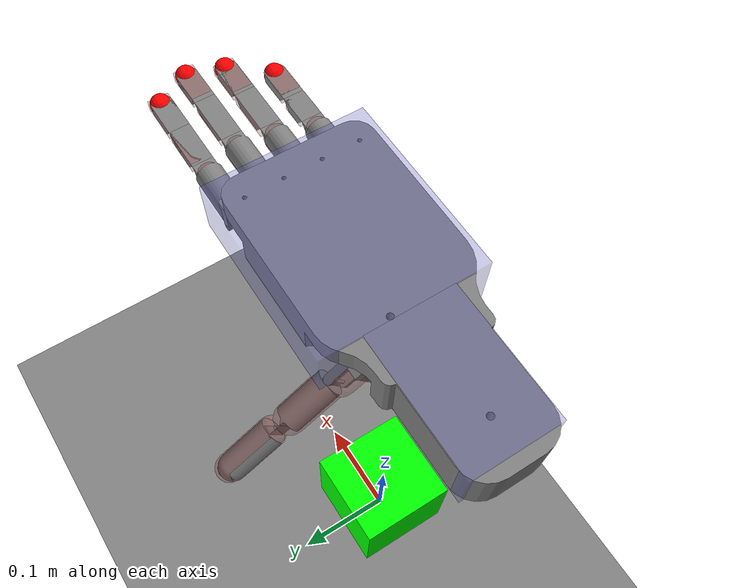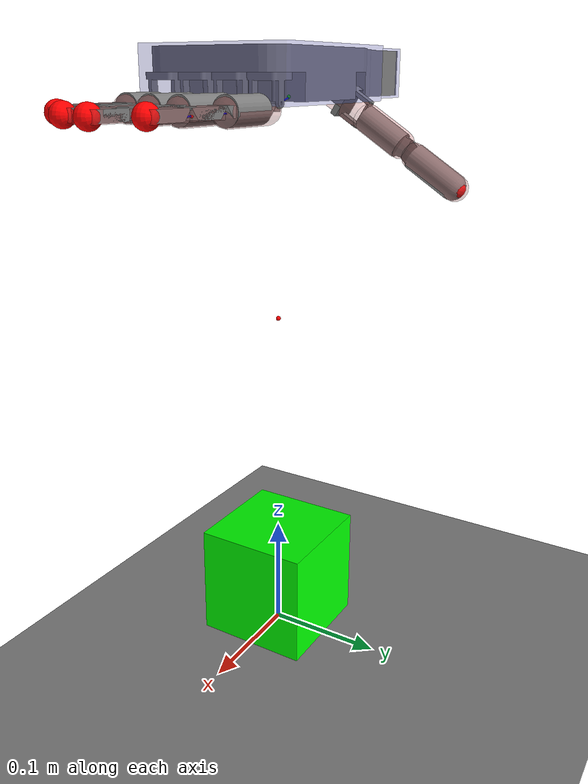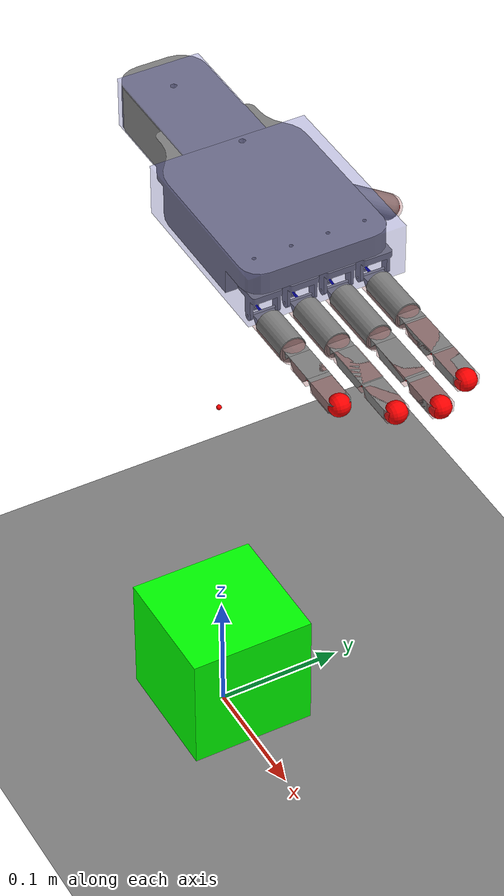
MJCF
<?xml version='1.0' encoding='utf-8'?>
<mujoco model="hand">
    <compiler angle="radian" />
    <option integrator="implicitfast" />
    <default>
        <geom solref="0.001 1" solimp="0.99 0.999 0.0001"/>
        <default class="cube">
            <geom friction="2.0 0.1 0.002" contype="2" conaffinity="1" condim="4" />
        </default>
        <default class="hand">
            <geom contype="1" conaffinity="2" type="mesh" density="1250" friction="0.7 0.05 0.0002" solref="0.02 1.5" solimp="0.9 0.95 0.001" condim="3" rgba="0 0 1 0"/>
        </default>
        <default class="visual">
            <geom contype="0" conaffinity="0" group="2" density="1"/>
        </default>
        <default class="tip">
            <geom type="sphere" size="0.0075" rgba="1 1 .6 .3" contype="1" conaffinity="2" density="1000" friction="12 0.2 0.01" solref="0.01 1" solimp="0.98 0.995 0.001" condim="6"/>
        </default>
        <!-- collision -->
        <default class="collision">
            <geom contype="1" conaffinity="2" density="1250" friction="1.0 0.1 0.001" solref="0.01 1" solimp="0.99 0.999 0.0001" condim="3" rgba="0.7 0.3 0.3 0.3"/>
        </default>
        <default class="palm_collision">
            <geom contype="1" conaffinity="2" density="1500" friction="1.0 0.1 0.001" solref="0.01 1" solimp="0.99 0.999 0.0001" condim="3" rgba="0.3 0.3 0.7 0.3"/>
        </default>
        <!-- tendon -->
        <default class="tendon">
            <tendon width=".0005" rgba="0 0 .9 1" solreflimit=".001 1" solimplimit="0.99 0.999 0.00001 0.1 20" stiffness="1"/>
        </default>
        <!-- joints -->
        <default class="thumb_joint">
            <joint type="hinge" solreflimit=".001 1" solimplimit="0.97 0.99 0.00001 0.1 2" damping="1" stiffness="1"/>
        </default>
        <default class="swing_joint">
            <joint type="hinge" solreflimit=".001 1" solimplimit="0.97 0.99 0.00001 0.1 2" damping="1" stiffness="1"/>
        </default>
        <default class="finger_joint">
            <joint type="hinge" range="0 1.57" limited="true" solreflimit=".001 1" solimplimit="0.97 0.99 0.00001 0.1 2" damping="1" stiffness="2"/>
        </default>
        <default class="palm_slide">
            <joint solreflimit=".001 1" solimplimit="0.97 0.99 0.00001 0.1 2" damping="1" stiffness="100"/>
        </default>
        <default class="palm_rotate">
            <joint solreflimit=".001 1" solimplimit="0.97 0.99 0.00001 0.1 2" damping="1" stiffness="60" limited="true"/>
        </default>
        <default class="touch_sensor">
            <site size="0.008" rgba="1 0 0 1" type="sphere"/>
        </default>
    </default>
    <asset>
        <texture type="2d" name="groundplane" builtin="checker" mark="edge" rgb1="1 1 1" rgb2="0 0 0" markrgb="0 0 0" width="300" height="300"/>
        <material name="groundplane" texture="groundplane" texuniform="true" texrepeat="5 5" reflectance="0"/>
        <mesh file="./meshes/palm.STL" name="mesh_0" />
        <mesh file="./meshes/thumb_link_0.STL" name="mesh_1" />
        <mesh file="./meshes/thumb_link_1.STL" name="mesh_2" />
        <mesh file="./meshes/thumb_link_2.STL" name="mesh_3" />
        <mesh file="./meshes/thumb_link_3.STL" name="mesh_4" />
        <mesh file="./meshes/index_link_0.STL" name="mesh_5" />
        <mesh file="./meshes/index_link_1.STL" name="mesh_6" />
        <mesh file="./meshes/index_link_2.STL" name="mesh_7" />
        <mesh file="./meshes/index_link_3.STL" name="mesh_8" />
        <mesh file="./meshes/middle_link_0.STL" name="mesh_9" />
        <mesh file="./meshes/middle_link_1.STL" name="mesh_10" />
        <mesh file="./meshes/middle_link_2.STL" name="mesh_11" />
        <mesh file="./meshes/middle_link_3.STL" name="mesh_12" />
        <mesh file="./meshes/ring_link_0.STL" name="mesh_13" />
        <mesh file="./meshes/ring_link_1.STL" name="mesh_14" />
        <mesh file="./meshes/ring_link_2.STL" name="mesh_15" />
        <mesh file="./meshes/ring_link_3.STL" name="mesh_16" />
        <mesh file="./meshes/little_link_0.STL" name="mesh_17" />
        <mesh file="./meshes/little_link_1.STL" name="mesh_18" />
        <mesh file="./meshes/little_link_2.STL" name="mesh_19" />
        <mesh file="./meshes/little_link_3.STL" name="mesh_20" />
    </asset>
    <option gravity="0 0 -9.81"/>
    <keyframe>
        <key name="home" qpos="0 0 0 0 0 0 0 0 0 0 0 0 0 0 0 0 0 0 0 0 0 0 0 0 0 0 0 0 0 0 0 0" qvel="0 0 0 0 0 0 0 0 0 0 0 0 0 0 0 0 0 0 0 0 0 0 0 0 0 0 0 0 0 0 0" ctrl="0 0 0 0 0 0 0 0 0 0 0 0 0 0 0 0 0 0 0 0 0 0" />
    </keyframe>
    <worldbody>
        <geom name="floor" pos="0 0 0" size="0 0 0.01" type="plane" material="groundplane" contype="1" conaffinity="2" friction="1 0.05 0.05" solref="0.001 1" solimp="0.98 0.99 0.001"/>
        <site name="target" pos="0 0 0.3" size="0.002" rgba="1 0 0 1"/>
        <body name="palm" pos="0 0 0.5" euler="3.14 1.57 -1.57" childclass="hand">
            <site name="palm_pos_site" pos="0.02 -0.02 0.06" size="0.002" rgba="0 0 1 1"/>
            <site name="index_t0" pos="0.059512 -0.015 0.082" size="0.002" rgba="0 0.6 0 1"/>
            <site name="middle_t0" pos="0.031512 -0.015 0.082" size="0.002" rgba="0 0.6 0 1"/>
            <site name="ring_t0" pos="0.003512 -0.015 0.082" size="0.002" rgba="0 0.6 0 1"/>
            <site name="little_t0" pos="-0.024488 -0.015 0.082" size="0.002" rgba="0 0.6 0 1"/>
            <joint name="palm_slide_x" type="slide" axis="1 0 0" class="palm_slide"/>
            <joint name="palm_slide_y" type="slide" axis="0 0 1" class="palm_slide"/>
            <joint name="palm_slide_z" type="slide" axis="0 1 0" class="palm_slide"/>
            <joint name="palm_rotate_x" type="hinge" axis="1 0 0" range="-1.57 1.57" class="palm_rotate"/>
            <joint name="palm_rotate_y" type="hinge" axis="0 1 0" range="-1.57 1.57" class="palm_rotate"/>
            <joint name="palm_rotate_z" type="hinge" axis="0 0 1" range="-3.14 3.14" class="palm_rotate"/>
            <geom name="palm_collision_1" type="box" pos="0.02 0 0.05" size="0.06 0.02 0.07" class="palm_collision"/>
            <geom name="palm_collision_2" type="box" pos="0.018 0 -0.07" size="0.032 0.02 0.05" class="palm_collision"/>
            <geom type="mesh" mesh="mesh_0" pos="0 0 0" class="visual"/>
            <body name="thumb_link_0" pos="0.029812 0 -0.017086" euler="3.14 1.57 0">
                <joint name="thumb_joint_0" type="hinge" axis="0 1 0" class="thumb_joint"/>
                <geom type="mesh" mesh="mesh_1" pos="0 0 0" class="visual"/>
                <body name="thumb_link_1" pos="0 0.011600 0.008500" euler="-0.57 0 0">
                    <joint name="thumb_joint_1" type="hinge" axis="-1 0 0" class="thumb_joint"/>
                    <geom type="mesh" mesh="mesh_2" pos="0 0 0" class="visual"/>
                    <geom name="thumb_link_1_collision" type="capsule" fromto="0 0 0 0 0 0.03" size="0.012" class="collision"/>
                    <body name="thumb_link_2" pos="0 0 0.033000" euler="-1.57 0 -1.57">
                        <joint name="thumb_joint_2" type="hinge" axis="0 0 1" class="thumb_joint" />
                        <geom type="mesh" mesh="mesh_3" pos="0 0 0" class="visual"/>
                        <geom name="thumb_link_2_collision" type="capsule" fromto="0.005 0.002 0 0.04 0.002 0" size="0.011" class="collision"/>
                        <body name="thumb_link_3" pos="0.045220 0 0" euler="0 0 -3.14">
                            <joint name="thumb_joint_3" type="hinge" axis="0 0 1" class="thumb_joint"/>
                            <geom type="mesh" mesh="mesh_4" pos="0 0 0" class="visual"/>
                            <geom name="thumb_link_3_collision" type="capsule" fromto="-0.01 -0.004 0 -0.05 -0.004 0" size="0.01" class="collision"/>
                            <site name="thumb_tip" pos="-0.05 -0.004 0" class="touch_sensor"/>
                        </body>
                    </body>
                </body>
            </body>
            <body name="index_link_0" pos="0.059512 0 0.099564" euler="1.57 0 3.14">
                <joint name="index_swing" axis="0 0 1." class="swing_joint"/>
                <geom type="mesh" mesh="mesh_5" pos="0 0 0" class="visual"/>
                <site name="index_t12" pos="0 0 0.02" size="0.001" rgba="1 0 0 1"/>
                <body name="index_link_1" pos="0 -0.012000 0.018000" euler="1.57 -1.57 0">
                    <joint name="index_joint_0" axis="0 0 1" class="finger_joint"/>
                    <geom name="index_link_1_collision" type="capsule" fromto="0 0.0045 0 0.045 0.0045 0" size="0.01" class="collision"/>
                    <geom type="mesh" mesh="mesh_6" pos="0 0 0" class="visual"/>
                    <body name="index_link_2" pos="0.056000 0 0" euler="-3.14 0 -3.14">
                        <joint name="index_joint_1" axis="0 0 -1" class="finger_joint"/>
                        <geom name="index_link_2_collision" type="box" pos="-0.018 0.004 0" size="0.016 0.004 0.008" class="collision"/>
                        <site name="index_t1_2_1" pos="-0.004 0.005 -0.005" size="0.001" rgba="1 0 0 1"/>
                        <site name="index_t2_2_1" pos="-0.004 0.005 0.005" size="0.001" rgba="1 0 0 1"/>
                        <site name="index_t1_2_2" pos="-0.031 0.005 -0.005" size="0.001" rgba="1 0 0 1"/>
                        <site name="index_t2_2_2" pos="-0.031 0.005 0.005" size="0.001" rgba="1 0 0 1"/>
                        <geom type="mesh" mesh="mesh_7" pos="0 0 0" class="visual"/>
                        <body name="index_link_3" pos="-0.035000 0 -0.006128" euler="-3.14 0 3.14">
                            <joint name="index_joint_2" axis="0 0 1" class="finger_joint"/>
                            <site name="index_t1_3_1" pos="0.004 0.005 -0.001" size="0.001" rgba="1 0 0 1"/>
                            <site name="index_t2_3_1" pos="0.004 0.005 -0.011" size="0.001" rgba="1 0 0 1"/>
                            <geom type="mesh" mesh="mesh_8" pos="0 0 0" class="visual"/>
                            <geom name="index_link_3_collision" type="box" pos="0.018 0.004 -0.006" size="0.016 0.004 0.008" class="collision"/>
                            <geom name="index_tip" type="sphere" pos="0.03 0.004 -0.006" size="0.008" class="tip"/>
                            <site name="index_tip" pos="0.03 0.004 -0.006" class="touch_sensor"/>
                        </body>
                    </body>
                </body>
            </body>
            <body name="middle_link_0" pos="0.031512 0 0.099564" euler="1.57 0 3.14">
                <joint name="middle_swing" axis="0 0 1" class="swing_joint"/>
                <geom type="mesh" mesh="mesh_9" pos="0 0 0" class="visual"/>
                <site name="middle_t12" pos="0 0 0.02" size="0.001" rgba="1 0 0 1"/>
                <body name="middle_link_1" pos="0 -0.012000 0.018000" euler="1.57 -1.57 0">
                    <joint name="middle_joint_0" axis="0 0 1" class="finger_joint"/>
                    <geom type="mesh" mesh="mesh_10" pos="0 0 0" class="visual"/>
                    <geom name="middle_link_1_collision" type="capsule" fromto="0 0.0045 0 0.055 0.0045 0" size="0.01" class="collision"/>
                    <body name="middle_link_2" pos="0.066000 0 0" euler="0 0 0">
                        <joint name="middle_joint_1" axis="0 0 1" class="finger_joint"/>
                        <site name="middle_t1_2_1" pos="0.004 0.005 0.005" size="0.001" rgba="1 0 0 1"/>
                        <site name="middle_t2_2_1" pos="0.004 0.005 -0.005" size="0.001" rgba="1 0 0 1"/>
                        <site name="middle_t1_2_2" pos="0.036 0.005 0.005" size="0.001" rgba="1 0 0 1"/>
                        <site name="middle_t2_2_2" pos="0.036 0.005 -0.005" size="0.001" rgba="1 0 0 1"/>
                        <geom type="mesh" mesh="mesh_11" pos="0 0 0" class="visual"/>
                        <geom name="middle_link_2_collision" type="box" pos="0.020 0.004 0" size="0.018 0.004 0.008" class="collision"/>
                        <body name="middle_link_3" pos="0.040000 0 0" euler="0 0 0">
                            <joint name="middle_joint_2" axis="0 0 1" class="finger_joint"/>
                            <site name="middle_t1_3_1" pos="0.004 0.005 0.005" size="0.001" rgba="1 0 0 1"/>
                            <site name="middle_t2_3_1" pos="0.004 0.005 -0.005" size="0.001" rgba="1 0 0 1"/>
                            <geom type="mesh" mesh="mesh_12" pos="0 0 0" class="visual"/>
                            <geom name="middle_link_3_collision" type="box" pos="0.019 0.004 0" size="0.015 0.004 0.008" class="collision"/>
                            <geom name="middle_tip" type="sphere" pos="0.03 0.004 0" size="0.008" class="tip"/>
                            <site name="middle_tip" pos="0.03 0.004 0" class="touch_sensor"/>
                        </body>
                    </body>
                </body>
            </body>
            <body name="ring_link_0" pos="0.003512 0 0.099564" euler="1.57 0 3.14">
                <joint name="ring_swing" axis="0 0 1" class="swing_joint"/>
                <site name="ring_t12" pos="0 0 0.02" size="0.001" rgba="1 0 0 1"/>
                <geom type="mesh" mesh="mesh_13" pos="0 0 0" class="visual"/>
                <body name="ring_link_1" pos="0 -0.012000 0.018000" euler="1.57 -1.57 0">
                    <joint name="ring_joint_0" axis="0 0 1" class="finger_joint"/>
                    <geom type="mesh" mesh="mesh_14" pos="0 0 0" class="visual"/>
                    <geom name="ring_link_1_collision" type="capsule" fromto="0 0.0045 0 0.050 0.0045 0" size="0.01" class="collision"/>
                    <body name="ring_link_2" pos="0.060000 0 0.011414" euler="3.14 0 -3.14">
                        <joint name="ring_joint_1" axis="0 0 -1" class="finger_joint"/>
                        <geom type="mesh" mesh="mesh_15" pos="0 0 0" class="visual"/>
                        <site name="ring_t1_2_1" pos="-0.004 0.005 0.0165" size="0.001" rgba="1 0 0 1"/>
                        <site name="ring_t2_2_1" pos="-0.004 0.005 0.0065" size="0.001" rgba="1 0 0 1"/>
                        <site name="ring_t1_2_2" pos="-0.033 0.005 0.0165" size="0.001" rgba="1 0 0 1"/>
                        <site name="ring_t2_2_2" pos="-0.033 0.005 0.0065" size="0.001" rgba="1 0 0 1"/>
                        <geom name="ring_link_2_collision" type="box" pos="-0.018 0.004 0.011" size="0.018 0.004 0.008" class="collision"/>
                        <body name="ring_link_3" pos="-0.037000 0 0.000235" euler="3.14 0 -3.14">
                            <joint name="ring_joint_2" axis="0 0 1" class="finger_joint"/>
                            <site name="ring_t1_3_1" pos="0.004 0.005 -0.016" size="0.001" rgba="1 0 0 1"/>
                            <site name="ring_t2_3_1" pos="0.004 0.005 -0.006" size="0.001" rgba="1 0 0 1"/>
                            <geom type="mesh" mesh="mesh_16" pos="0 0 0" class="visual"/>
                            <geom name="ring_link_3_collision" type="box" pos="0.018 0.004 -0.011" size="0.015 0.004 0.008" class="collision"/>
                            <geom name="ring_tip" type="sphere" pos="0.03 0.004 -0.011" size="0.008" class="tip"/>
                            <site name="ring_tip" pos="0.03 0.004 -0.011" class="touch_sensor"/>
                        </body>
                    </body>
                </body>
            </body>
            <body name="little_link_0" pos="-0.024488 0 0.099564" euler="1.57 0 3.14">
                <joint name="little_swing" axis="0 0 1" class="swing_joint"/>
                <site name="little_t12" pos="0 0 0.02" size="0.001" rgba="1 0 0 1"/>
                <geom type="mesh" mesh="mesh_17" pos="0 0 0" class="visual"/>
                <body name="little_link_1" pos="0 -0.012000 0.018000" euler="1.57 -1.57 0">
                    <joint name="little_joint_0" axis="0 0 1" class="finger_joint"/>
                    <geom type="mesh" mesh="mesh_18" pos="0 0 0" class="visual"/>
                    <geom name="little_link_1_collision" type="capsule" fromto="0 0.0045 0 0.04 0.0045 0" size="0.01" class="collision"/>
                    <body name="little_link_2" pos="0.050000 0 -0.014092" euler="-3.14 0 3.14">
                        <joint name="little_joint_1" axis="0 0 -1" class="finger_joint"/>
                        <site name="little_t1_2_1" pos="-0.004 0.005 -0.019" size="0.001" rgba="1 0 0 1"/>
                        <site name="little_t2_2_1" pos="-0.004 0.005 -0.009" size="0.001" rgba="1 0 0 1"/>
                        <site name="little_t1_2_2" pos="-0.021 0.005 -0.019" size="0.001" rgba="1 0 0 1"/>
                        <site name="little_t2_2_2" pos="-0.021 0.005 -0.009" size="0.001" rgba="1 0 0 1"/>
                        <geom type="mesh" mesh="mesh_19" pos="0 0 0" class="visual"/>
                        <geom name="little_link_2_collision" type="box" pos="-0.013 0.004 -0.014" size="0.01 0.004 0.008" class="collision"/>
                        <body name="little_link_3" pos="-0.025000 0 0.002130" euler="-3.14 0 -3.14">
                            <joint name="little_joint_2" axis="0 0 1" class="finger_joint"/>
                            <site name="little_t1_3_1" pos="0.004 0.005 0.0213" size="0.001" rgba="1 0 0 1"/>
                            <site name="little_t2_3_1" pos="0.004 0.005 0.0113" size="0.001" rgba="1 0 0 1"/>
                            <geom type="mesh" mesh="mesh_20" pos="0 0 0" class="visual"/>
                            <geom name="little_link_3_collision" type="box" pos="0.016 0.004 0.016" size="0.012 0.004 0.008" class="collision"/>
                            <geom name="little_tip" type="sphere" pos="0.028 0.004 0.016" size="0.008" class="tip"/>
                            <site name="little_tip" pos="0.028 0.004 0.016" class="touch_sensor"/>
                        </body>
                    </body>
                </body>
            </body>
        </body>
        <!-- 待抓取方块 -->
        <body name="cube" pos="0.0 0.0 0.05" quat="0 0 0 1" childclass="cube">
            <freejoint name="cube_freejoint"/>
            <geom name="cube" type="box" size="0.05 0.05 0.05" rgba="0 1 0 1" density="500"/>
            <site name="cube_center" pos="0 0 0" group="4"/>
        </body>
    </worldbody>
    <tendon>
        <!-- index -->
        <spatial name="index_tendon" class="tendon">
            <site site="index_t0"/>
            <site site="index_t12"/>
            <pulley divisor="2"/>
            <site site="index_t12"/>
            <site site="index_t1_2_1"/>
            <site site="index_t1_2_2"/>
            <site site="index_t1_3_1"/>
            <pulley divisor="2"/>
            <site site="index_t12"/>
            <site site="index_t2_2_1"/>
            <site site="index_t2_2_2"/>
            <site site="index_t2_3_1"/>
        </spatial>
        <!-- middle -->
        <spatial name="middle_tendon" class="tendon">
            <site site="middle_t0"/>
            <site site="middle_t12"/>
            <pulley divisor="2"/>
            <site site="middle_t12"/>
            <site site="middle_t1_2_1"/>
            <site site="middle_t1_2_2"/>
            <site site="middle_t1_3_1"/>
            <pulley divisor="2"/>
            <site site="middle_t12"/>
            <site site="middle_t2_2_1"/>
            <site site="middle_t2_2_2"/>
            <site site="middle_t2_3_1"/>
        </spatial>
        <!-- ring -->
        <spatial name="ring_tendon" class="tendon">
            <site site="ring_t0"/>
            <site site="ring_t12"/>
            <pulley divisor="2"/>
            <site site="ring_t12"/>
            <site site="ring_t1_2_1"/>
            <site site="ring_t1_2_2"/>
            <site site="ring_t1_3_1"/>
            <pulley divisor="2"/>
            <site site="ring_t12"/>
            <site site="ring_t2_2_1"/>
            <site site="ring_t2_2_2"/>
            <site site="ring_t2_3_1"/>
        </spatial>
        <spatial name="little_tendon" class="tendon">
            <site site="little_t0"/>
            <site site="little_t12"/>
            <pulley divisor="2"/>
            <site site="little_t12"/>
            <site site="little_t1_2_1"/>
            <site site="little_t1_2_2"/>
            <site site="little_t1_3_1"/>
            <pulley divisor="2"/>
            <site site="little_t12"/>
            <site site="little_t2_2_1"/>
            <site site="little_t2_2_2"/>
            <site site="little_t2_3_1"/>
        </spatial>
    </tendon>
    <actuator>
        <!-- 驱动器对应action速查
            [0:3]对应thumb转动关节
            [4:7]对应四指swing关节
            [8:11]对应四指最靠近手掌的关节
            [12:15]对应四指绳驱动
            [16:21]对应palm平移旋转关节
        -->
        <!-- 直接驱动 -->
        <position name="thumb_joint_0" joint="thumb_joint_0" ctrllimited="true" ctrlrange="-1 1" kp="10"/>
        <position name="thumb_joint_1" joint="thumb_joint_1" ctrllimited="true" ctrlrange="-1 1" gear="0.5" kp="40"/>
        <position name="thumb_joint_2" joint="thumb_joint_2" ctrllimited="true" ctrlrange="-1 1" kp="10"/>
        <position name="thumb_joint_3" joint="thumb_joint_3" ctrllimited="true" ctrlrange="-1 1" kp="10"/>
        <position name="index_swing" joint="index_swing" ctrllimited="true" ctrlrange="-1 1" gear="1.91" kp="2.7"/>
        <position name="middle_swing" joint="middle_swing" ctrllimited="true" ctrlrange="-1 1" gear="3.83" kp="0.68"/>
        <position name="ring_swing" joint="ring_swing" ctrllimited="true" ctrlrange="-1 1" gear="3.83" kp="0.68"/>
        <position name="little_swing" joint="little_swing" ctrllimited="true" ctrlrange="-1 1" gear="1.91" kp="2.7"/>
        <!-- 最靠近手掌的关节 -->
        <position name="index_joint_0" joint="index_joint_0" ctrllimited="true" ctrlrange="-1 1" gear="0.637" kp="500"/>
        <position name="middle_joint_0" joint="middle_joint_0" ctrllimited="true" ctrlrange="-1 1" gear="0.637" kp="500"/>
        <position name="ring_joint_0" joint="ring_joint_0" ctrllimited="true" ctrlrange="-1 1" gear="0.637" kp="500"/>
        <position name="little_joint_0" joint="little_joint_0" ctrllimited="true" ctrlrange="-1 1" gear="0.637" kp="500"/>
        <!-- 绳驱动 -->
        <position name="index_tendon" tendon="index_tendon" ctrllimited="true" ctrlrange="-1 1" kp="500"/>
        <position name="middle_tendon" tendon="middle_tendon" ctrllimited="true" ctrlrange="-1 1" kp="500"/>
        <position name="ring_tendon" tendon="ring_tendon" ctrllimited="true" ctrlrange="-1 1" kp="500"/>
        <position name="little_tendon" tendon="little_tendon" ctrllimited="true" ctrlrange="-1 1" kp="500"/>
        <!-- palm驱动 -->
        <position name="palm_slide_x" joint="palm_slide_x" ctrllimited="true" ctrlrange="-1 1" kp="900" dampratio="1"/>
        <position name="palm_slide_y" joint="palm_slide_y" ctrllimited="true" ctrlrange="-1 1" kp="900" dampratio="1"/>
        <position name="palm_slide_z" joint="palm_slide_z" ctrllimited="true" ctrlrange="-1 1" kp="900" dampratio="1"/>
        <position name="palm_rotate_x" joint="palm_rotate_x" ctrllimited="true" ctrlrange="-1 1" gear="5" kp="20" dampratio="1"/>
        <position name="palm_rotate_y" joint="palm_rotate_y" ctrllimited="true" ctrlrange="-1 1" gear="5" kp="20" dampratio="1"/>
        <position name="palm_rotate_z" joint="palm_rotate_z" ctrllimited="true" ctrlrange="-1 1" gear="0.318" kp="3000" dampratio="1"/>
    </actuator>
    <sensor>
        <!-- cube sensor -->
        <framepos name="cube_pos" objtype="body" objname="cube"/>
        <framequat name="cube_quat" objtype="body" objname="cube"/>
        <framelinvel name="cube_linvel" objtype="body" objname="cube"/>
        <frameangvel name="cube_angvel" objtype="body" objname="cube"/>
        <frameangacc name="cube_angacc" objtype="body" objname="cube"/>
        <framezaxis name="cube_upvector" objtype="body" objname="cube"/>
        <!-- palm pos sensor -->
        <framepos name="palm_pos" objtype="site" objname="palm_pos_site"/>
        <!-- fingertip pos sensor -->
        <framepos name="thumb_fingertip_pos" objtype="site" objname="thumb_tip"/>
        <framepos name="index_fingertip_pos" objtype="site" objname="index_tip"/>
        <framepos name="middle_fingertip_pos" objtype="site" objname="middle_tip"/>
        <framepos name="ring_fingertip_pos" objtype="site" objname="ring_tip"/>
        <framepos name="little_fingertip_pos" objtype="site" objname="little_tip"/>
        <!-- touch sensor -->
        <touch name="thumb_touch" site="thumb_tip"/>
        <touch name="index_touch" site="index_tip"/>
        <touch name="middle_touch" site="middle_tip"/>
        <touch name="ring_touch" site="ring_tip"/>
        <touch name="little_touch" site="little_tip"/>
    </sensor>
</mujoco>
